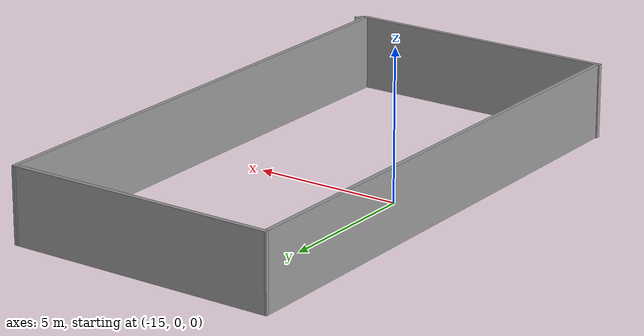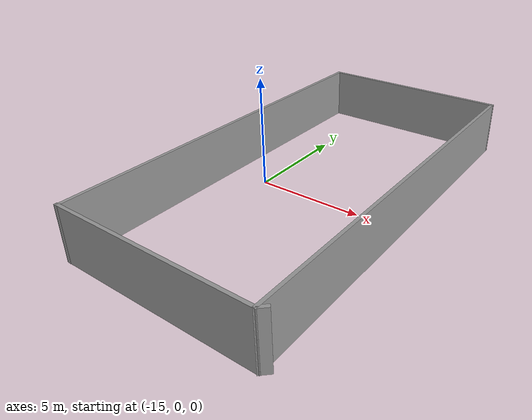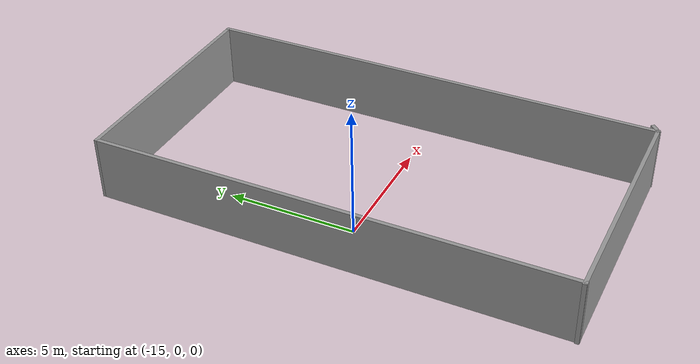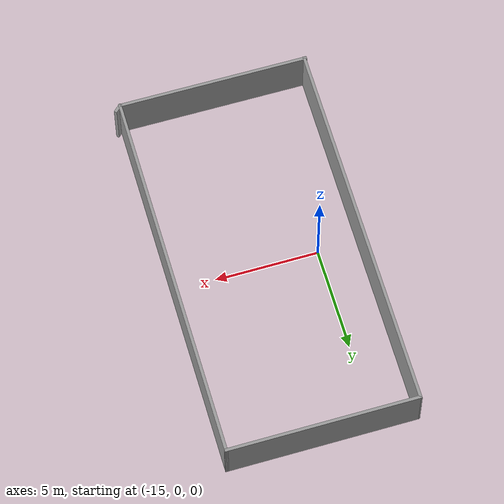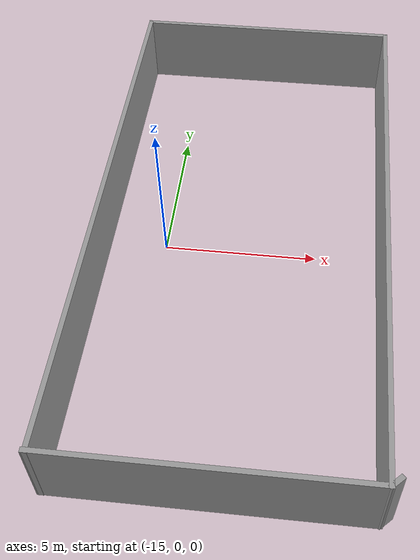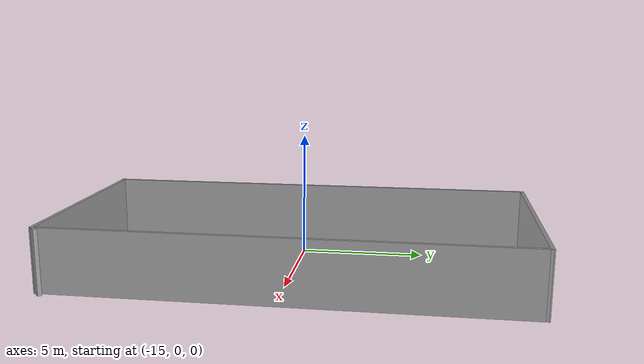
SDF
<?xml version='1.0'?>
<sdf version='1.6'>
  <model name='big_rect'>
    <pose frame=''>-12.3067 0.186939 0 0 -0 0</pose>
    <link name='Wall_1'>
      <collision name='Wall_1_Collision'>
        <geometry>
          <box>
            <size>18.25 0.15 2.5</size>
          </box>
        </geometry>
        <pose frame=''>0 0 1.25 0 -0 0</pose>
      </collision>
      <visual name='Wall_1_Visual'>
        <pose frame=''>0 0 1.25 0 -0 0</pose>
        <geometry>
          <box>
            <size>18.25 0.15 2.5</size>
          </box>
        </geometry>
        <material>
          <script>
            <uri>file://media/materials/scripts/gazebo.material</uri>
            <name>Gazebo/Grey</name>
          </script>
          <ambient>1 1 1 1</ambient>
        </material>
        <meta>
          <layer>0</layer>
        </meta>
      </visual>
      <pose frame=''>-4.64193 0.006233 0 0 -0 -1.5708</pose>
    </link>
    <link name='Wall_3'>
      <collision name='Wall_3_Collision'>
        <geometry>
          <box>
            <size>18.25 0.15 2.5</size>
          </box>
        </geometry>
        <pose frame=''>0 0 1.25 0 -0 0</pose>
      </collision>
      <visual name='Wall_3_Visual'>
        <pose frame=''>0 0 1.25 0 -0 0</pose>
        <geometry>
          <box>
            <size>18.25 0.15 2.5</size>
          </box>
        </geometry>
        <material>
          <script>
            <uri>file://media/materials/scripts/gazebo.material</uri>
            <name>Gazebo/Grey</name>
          </script>
          <ambient>1 1 1 1</ambient>
        </material>
        <meta>
          <layer>0</layer>
        </meta>
      </visual>
      <pose frame=''>4.41229 0.015462 0 0 -0 1.5708</pose>
    </link>
    <link name='Wall_6'>
      <collision name='Wall_6_Collision'>
        <geometry>
          <box>
            <size>9.20422 0.15 2.5</size>
          </box>
        </geometry>
        <pose frame=''>0 0 1.25 0 -0 0</pose>
      </collision>
      <visual name='Wall_6_Visual'>
        <pose frame=''>0 0 1.25 0 -0 0</pose>
        <geometry>
          <box>
            <size>9.20422 0.15 2.5</size>
          </box>
        </geometry>
        <material>
          <script>
            <uri>file://media/materials/scripts/gazebo.material</uri>
            <name>Gazebo/Grey</name>
          </script>
          <ambient>1 1 1 1</ambient>
        </material>
        <meta>
          <layer>0</layer>
        </meta>
      </visual>
      <pose frame=''>-0.114822 9.06085 0 0 -0 0.001019</pose>
    </link>
    <link name='Wall_8'>
      <collision name='Wall_8_Collision'>
        <geometry>
          <box>
            <size>0.484149 0.15 2.5</size>
          </box>
        </geometry>
        <pose frame=''>0 0 1.25 0 -0 0</pose>
      </collision>
      <visual name='Wall_8_Visual'>
        <pose frame=''>0 0 1.25 0 -0 0</pose>
        <geometry>
          <box>
            <size>0.484149 0.15 2.5</size>
          </box>
        </geometry>
        <material>
          <script>
            <uri>file://media/materials/scripts/gazebo.material</uri>
            <name>Gazebo/Grey</name>
          </script>
          <ambient>1 1 1 1</ambient>
        </material>
        <meta>
          <layer>0</layer>
        </meta>
      </visual>
      <pose frame=''>4.5345 -8.92062 0 0 -0 -2.3913</pose>
    </link>
    <link name='Wall_9'>
      <collision name='Wall_9_Collision'>
        <geometry>
          <box>
            <size>9.25 0.15 2.5</size>
          </box>
        </geometry>
        <pose frame=''>0 0 1.25 0 -0 0</pose>
      </collision>
      <visual name='Wall_9_Visual'>
        <pose frame=''>0 0 1.25 0 -0 0</pose>
        <geometry>
          <box>
            <size>9.25 0.15 2.5</size>
          </box>
        </geometry>
        <material>
          <script>
            <uri>file://media/materials/scripts/gazebo.material</uri>
            <name>Gazebo/Grey</name>
          </script>
          <ambient>1 1 1 1</ambient>
        </material>
        <meta>
          <layer>0</layer>
        </meta>
      </visual>
      <pose frame=''>-0.137713 -9.03454 0 0 -0 3.14159</pose>
    </link>
    <static>1</static>
  </model>
</sdf>
